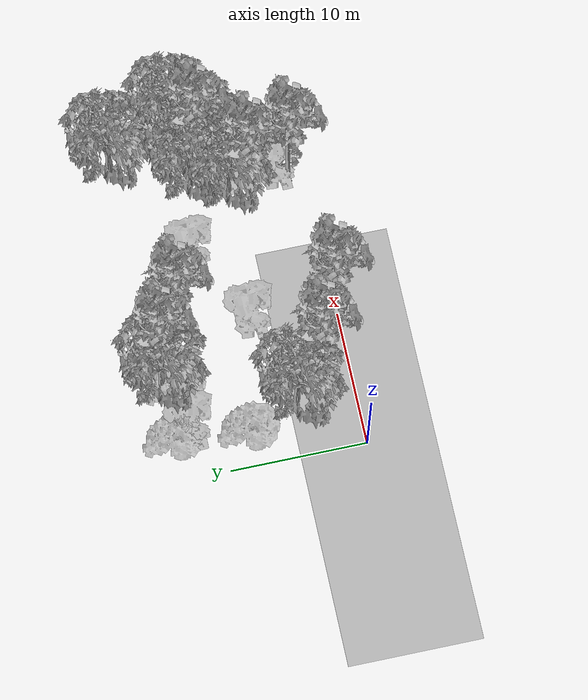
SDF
<sdf version="1.7">
 <world name="default">
  <model name="ground_plane">
   <static>1</static>
   <link name="link">
    <collision name="collision">
     <pose>-50 0 0 0 -0 0</pose>
     <geometry><plane><normal>0 0 1</normal><size>100 100</size></plane></geometry>
     <surface><contact><ode><min_depth>0.01</min_depth><max_vel>0</max_vel></ode></contact></surface>
    </collision>
    <visual name="grass">
     <cast_shadows>0</cast_shadows>
     <geometry>
      <mesh>
       <scale>0.5814285714285714 0.18142857142857144 0.1</scale>
       <uri>file://grass_plane/meshes/grass_plane.dae</uri>
      </mesh>
     </geometry>
    </visual>
   </link>
  </model>
  <model name="Tree 18">
   <static>1</static>
   <pose>22.5986370348634 5.713508885821682 0 1.57079 -0 0</pose>
   <link name="link">
    <collision name="collision">
     <geometry><mesh><scale>3 2 3</scale><uri>model://tree_3/meshes/tree_3.obj</uri></mesh></geometry>
    </collision>
    <visual name="visual">
     <geometry><mesh><scale>3 2 3</scale><uri>model://tree_3/meshes/tree_3.obj</uri></mesh></geometry>
    </visual>
   </link>
  </model>
  <model name="Tree 38">
   <static>1</static>
   <pose>20.356086381126218 5.936822487014425 0 1.57079 -0 0</pose>
   <link name="link">
    <collision name="collision">
     <geometry><mesh><scale>3.5 5 3.5</scale><uri>model://tree_2/meshes/tree_2.obj</uri></mesh></geometry>
    </collision>
    <visual name="visual">
     <geometry><mesh><scale>3.5 5 3.5</scale><uri>model://tree_2/meshes/tree_2.obj</uri></mesh></geometry>
    </visual>
   </link>
  </model>
  <model name="Tree 42">
   <static>1</static>
   <pose>23.66521952611548 7.599572120415381 0 1.57079 -0 0</pose>
   <link name="link">
    <collision name="collision">
     <geometry><mesh><scale>3.5 5 3.5</scale><uri>model://tree_9/meshes/tree_9.obj</uri></mesh></geometry>
    </collision>
    <visual name="visual">
     <geometry><mesh><scale>3.5 5 3.5</scale><uri>model://tree_9/meshes/tree_9.obj</uri></mesh></geometry>
    </visual>
   </link>
  </model>
  <model name="Tree 43">
   <static>1</static>
   <pose>22.17410977936028 1.8315779820552542 0 1.57079 -0 0</pose>
   <link name="link">
    <collision name="collision">
     <geometry><mesh><scale>3 2 3</scale><uri>model://tree_3/meshes/tree_3.obj</uri></mesh></geometry>
    </collision>
    <visual name="visual">
     <geometry><mesh><scale>3 2 3</scale><uri>model://tree_3/meshes/tree_3.obj</uri></mesh></geometry>
    </visual>
   </link>
  </model>
  <model name="Tree 44">
   <static>1</static>
   <pose>4.048705332830771 11.902267295829922 0 1.57079 -0 0</pose>
   <link name="link">
    <collision name="collision">
     <geometry><mesh><scale>3 2 3</scale><uri>model://tree_3/meshes/tree_3.obj</uri></mesh></geometry>
    </collision>
    <visual name="visual">
     <geometry><mesh><scale>3 2 3</scale><uri>model://tree_3/meshes/tree_3.obj</uri></mesh></geometry>
    </visual>
   </link>
  </model>
  <model name="Tree 56">
   <static>1</static>
   <pose>3.7757467004225944 4.374059397080369 0 1.57079 -0 0</pose>
   <link name="link">
    <collision name="collision">
     <geometry><mesh><scale>3.5 5 3.5</scale><uri>model://tree_2/meshes/tree_2.obj</uri></mesh></geometry>
    </collision>
    <visual name="visual">
     <geometry><mesh><scale>3.5 5 3.5</scale><uri>model://tree_2/meshes/tree_2.obj</uri></mesh></geometry>
    </visual>
   </link>
  </model>
  <model name="Tree 58">
   <static>1</static>
   <pose>8.151192255122794 13.256966984905226 0 1.57079 -0 0</pose>
   <link name="link">
    <collision name="collision">
     <geometry><mesh><scale>3.5 5 3.5</scale><uri>model://tree_9/meshes/tree_9.obj</uri></mesh></geometry>
    </collision>
    <visual name="visual">
     <geometry><mesh><scale>3.5 5 3.5</scale><uri>model://tree_9/meshes/tree_9.obj</uri></mesh></geometry>
    </visual>
   </link>
  </model>
  <model name="Tree 61">
   <static>1</static>
   <pose>17.153176438397182 9.180392943523916 0 1.57079 -0 0</pose>
   <link name="link">
    <collision name="collision">
     <geometry><mesh><scale>3 2 3</scale><uri>model://tree_3/meshes/tree_3.obj</uri></mesh></geometry>
    </collision>
    <visual name="visual">
     <geometry><mesh><scale>3 2 3</scale><uri>model://tree_3/meshes/tree_3.obj</uri></mesh></geometry>
    </visual>
   </link>
  </model>
  <model name="Tree 70">
   <static>1</static>
   <pose>11.103912648760044 11.541365801677948 0 1.57079 -0 0</pose>
   <link name="link">
    <collision name="collision">
     <geometry><mesh><scale>3.5 5 3.5</scale><uri>model://tree_9/meshes/tree_9.obj</uri></mesh></geometry>
    </collision>
    <visual name="visual">
     <geometry><mesh><scale>3.5 5 3.5</scale><uri>model://tree_9/meshes/tree_9.obj</uri></mesh></geometry>
    </visual>
   </link>
  </model>
  <model name="Tree 71">
   <static>1</static>
   <pose>10.219247963593993 0.39684325026729894 0 1.57079 -0 0</pose>
   <link name="link">
    <collision name="collision">
     <geometry><mesh><scale>3.5 5 3.5</scale><uri>model://tree_9/meshes/tree_9.obj</uri></mesh></geometry>
    </collision>
    <visual name="visual">
     <geometry><mesh><scale>3.5 5 3.5</scale><uri>model://tree_9/meshes/tree_9.obj</uri></mesh></geometry>
    </visual>
   </link>
  </model>
  <model name="Tree 72">
   <static>1</static>
   <pose>21.52739847541588 8.511755102074702 0 1.57079 -0 0</pose>
   <link name="link">
    <collision name="collision">
     <geometry><mesh><scale>3.5 5 3.5</scale><uri>model://tree_2/meshes/tree_2.obj</uri></mesh></geometry>
    </collision>
    <visual name="visual">
     <geometry><mesh><scale>3.5 5 3.5</scale><uri>model://tree_2/meshes/tree_2.obj</uri></mesh></geometry>
    </visual>
   </link>
  </model>
  <model name="Tree 86">
   <static>1</static>
   <pose>6.152143266373187 2.112180688247033 0 1.57079 -0 0</pose>
   <link name="link">
    <collision name="collision">
     <geometry><mesh><scale>3.5 5 3.5</scale><uri>model://tree_9/meshes/tree_9.obj</uri></mesh></geometry>
    </collision>
    <visual name="visual">
     <geometry><mesh><scale>3.5 5 3.5</scale><uri>model://tree_9/meshes/tree_9.obj</uri></mesh></geometry>
    </visual>
   </link>
  </model>
  <model name="Tree 92">
   <static>1</static>
   <pose>23.80845545137541 7.5660319607333015 0 1.57079 -0 0</pose>
   <link name="link">
    <collision name="collision">
     <geometry><mesh><scale>3.5 5 3.5</scale><uri>model://tree_2/meshes/tree_2.obj</uri></mesh></geometry>
    </collision>
    <visual name="visual">
     <geometry><mesh><scale>3.5 5 3.5</scale><uri>model://tree_2/meshes/tree_2.obj</uri></mesh></geometry>
    </visual>
   </link>
  </model>
  <model name="Tree 102">
   <static>1</static>
   <pose>6.670712943734749 12.542488901154474 0 1.57079 -0 0</pose>
   <link name="link">
    <collision name="collision">
     <geometry><mesh><scale>4 2.5 4</scale><uri>model://tree_1/meshes/tree_1.obj</uri></mesh></geometry>
    </collision>
    <visual name="visual">
     <geometry><mesh><scale>4 2.5 4</scale><uri>model://tree_1/meshes/tree_1.obj</uri></mesh></geometry>
    </visual>
   </link>
  </model>
  <model name="Tree 132">
   <static>1</static>
   <pose>20.401211970759277 4.3034705526578705 0 1.57079 -0 0</pose>
   <link name="link">
    <collision name="collision">
     <geometry><mesh><scale>3.5 5 3.5</scale><uri>model://tree_9/meshes/tree_9.obj</uri></mesh></geometry>
    </collision>
    <visual name="visual">
     <geometry><mesh><scale>3.5 5 3.5</scale><uri>model://tree_9/meshes/tree_9.obj</uri></mesh></geometry>
    </visual>
   </link>
  </model>
  <model name="Tree 136">
   <static>1</static>
   <pose>23.069738033810665 8.522267718421205 0 1.57079 -0 0</pose>
   <link name="link">
    <collision name="collision">
     <geometry><mesh><scale>3.5 5 3.5</scale><uri>model://tree_2/meshes/tree_2.obj</uri></mesh></geometry>
    </collision>
    <visual name="visual">
     <geometry><mesh><scale>3.5 5 3.5</scale><uri>model://tree_2/meshes/tree_2.obj</uri></mesh></geometry>
    </visual>
   </link>
  </model>
  <model name="Tree 139">
   <static>1</static>
   <pose>23.947210819419837 14.0227231274099 0 1.57079 -0 0</pose>
   <link name="link">
    <collision name="collision">
     <geometry><mesh><scale>3.5 5 3.5</scale><uri>model://tree_2/meshes/tree_2.obj</uri></mesh></geometry>
    </collision>
    <visual name="visual">
     <geometry><mesh><scale>3.5 5 3.5</scale><uri>model://tree_2/meshes/tree_2.obj</uri></mesh></geometry>
    </visual>
   </link>
  </model>
  <model name="Tree 142">
   <static>1</static>
   <pose>11.329388590453327 5.951377891313673 0 1.57079 -0 0</pose>
   <link name="link">
    <collision name="collision">
     <geometry><mesh><scale>3 2 3</scale><uri>model://tree_3/meshes/tree_3.obj</uri></mesh></geometry>
    </collision>
    <visual name="visual">
     <geometry><mesh><scale>3 2 3</scale><uri>model://tree_3/meshes/tree_3.obj</uri></mesh></geometry>
    </visual>
   </link>
  </model>
  <model name="Tree 144">
   <static>1</static>
   <pose>6.8850642191216735 13.577228065021494 0 1.57079 -0 0</pose>
   <link name="link">
    <collision name="collision">
     <geometry><mesh><scale>3.5 5 3.5</scale><uri>model://tree_2/meshes/tree_2.obj</uri></mesh></geometry>
    </collision>
    <visual name="visual">
     <geometry><mesh><scale>3.5 5 3.5</scale><uri>model://tree_2/meshes/tree_2.obj</uri></mesh></geometry>
    </visual>
   </link>
  </model>
  <model name="Tree 145">
   <static>1</static>
   <pose>25.779015445688415 9.10186360200693 0 1.57079 -0 0</pose>
   <link name="link">
    <collision name="collision">
     <geometry><mesh><scale>3.5 5 3.5</scale><uri>model://tree_2/meshes/tree_2.obj</uri></mesh></geometry>
    </collision>
    <visual name="visual">
     <geometry><mesh><scale>3.5 5 3.5</scale><uri>model://tree_2/meshes/tree_2.obj</uri></mesh></geometry>
    </visual>
   </link>
  </model>
  <model name="Tree 155">
   <static>1</static>
   <pose>2.460023438738318 7.990697599156164 0 1.57079 -0 0</pose>
   <link name="link">
    <collision name="collision">
     <geometry><mesh><scale>4 2.5 4</scale><uri>model://tree_1/meshes/tree_1.obj</uri></mesh></geometry>
    </collision>
    <visual name="visual">
     <geometry><mesh><scale>4 2.5 4</scale><uri>model://tree_1/meshes/tree_1.obj</uri></mesh></geometry>
    </visual>
   </link>
  </model>
  <model name="Tree 168">
   <static>1</static>
   <pose>20.95444582603095 1.3414801839068495 0 1.57079 -0 0</pose>
   <link name="link">
    <collision name="collision">
     <geometry><mesh><scale>3.5 5 3.5</scale><uri>model://tree_9/meshes/tree_9.obj</uri></mesh></geometry>
    </collision>
    <visual name="visual">
     <geometry><mesh><scale>3.5 5 3.5</scale><uri>model://tree_9/meshes/tree_9.obj</uri></mesh></geometry>
    </visual>
   </link>
  </model>
  <model name="Tree 177">
   <static>1</static>
   <pose>2.8747252176073914 13.385807418519018 0 1.57079 -0 0</pose>
   <link name="link">
    <collision name="collision">
     <geometry><mesh><scale>4 2.5 4</scale><uri>model://tree_1/meshes/tree_1.obj</uri></mesh></geometry>
    </collision>
    <visual name="visual">
     <geometry><mesh><scale>4 2.5 4</scale><uri>model://tree_1/meshes/tree_1.obj</uri></mesh></geometry>
    </visual>
   </link>
  </model>
 </world>
</sdf>
